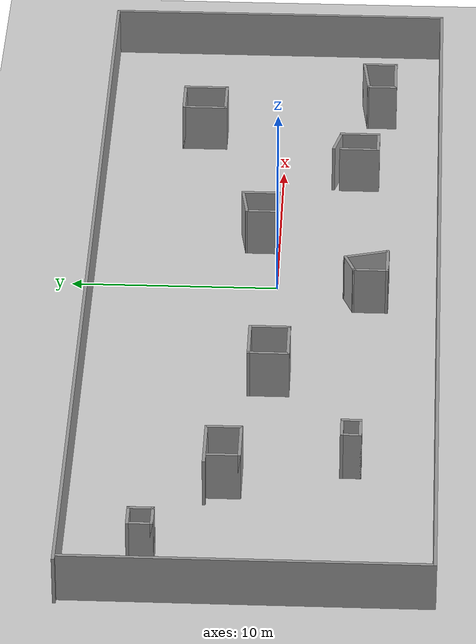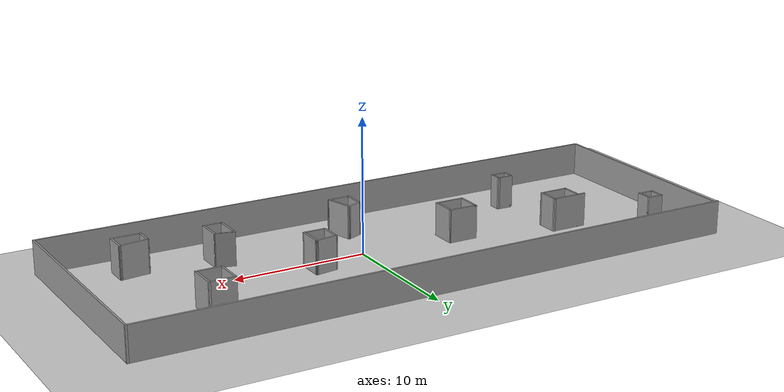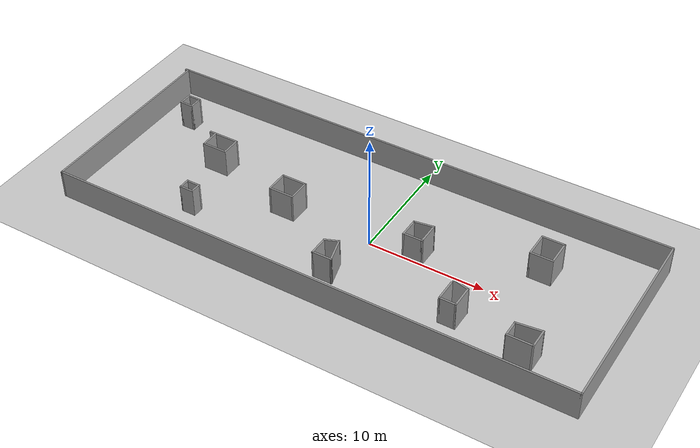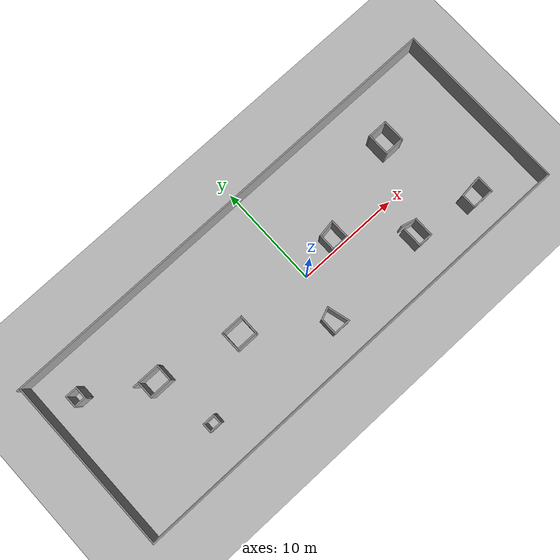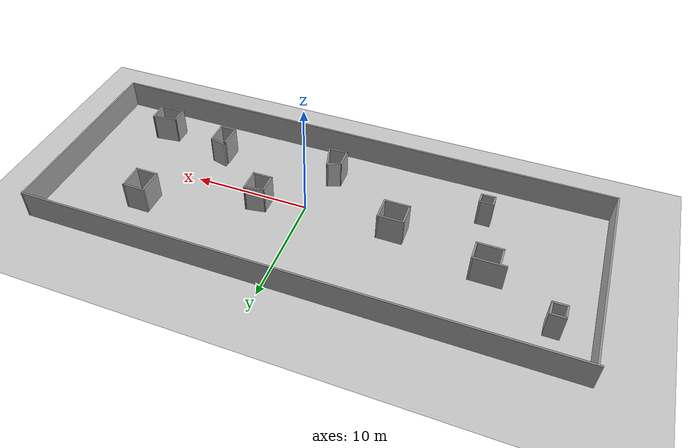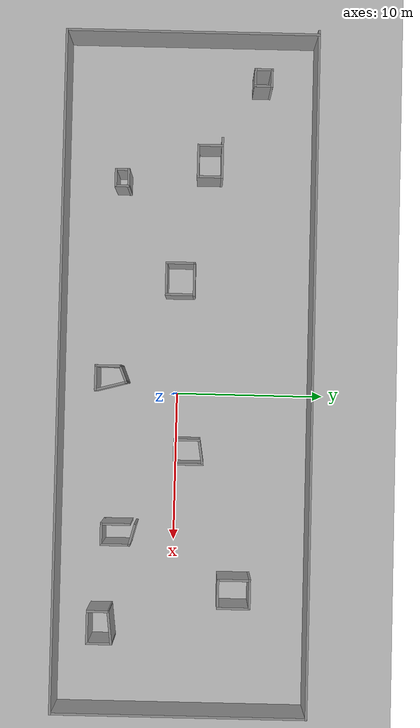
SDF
<sdf version="1.6">
 <world name="default">
  <light name="sun" type="directional">
   <pose>0 0 10 0 -0 0</pose>
   <diffuse>0.8 0.8 0.8 1</diffuse>
   <specular>0.2 0.2 0.2 1</specular>
   <attenuation>
    <range>1000</range>
    <constant>0.9</constant>
    <linear>0.01</linear>
    <quadratic>0.001</quadratic>
   </attenuation>
   <direction>-0.5 0.1 -0.9</direction>
  </light>
  <model name="ground_plane">
   <static>1</static>
   <link name="link">
    <collision name="collision">
     <geometry><plane><normal>0 0 1</normal><size>100 100</size></plane></geometry>
     <surface>
      <contact><collide_bitmask>65535</collide_bitmask></contact>
      <friction><ode><mu>100</mu><mu2>50</mu2></ode></friction>
     </surface>
    </collision>
    <visual name="visual">
     <cast_shadows>0</cast_shadows>
     <geometry><plane><normal>0 0 1</normal><size>100 100</size></plane></geometry>
     <material>
      <script><uri>file://media/materials/scripts/gazebo.material</uri><name>Gazebo/Grey</name></script>
     </material>
    </visual>
   </link>
  </model>
  <gravity>0 0 -9.8</gravity>
  <magnetic_field>6e-06 2.3e-05 -4.2e-05</magnetic_field>
  <atmosphere type="adiabatic"/>
  <physics name="default_physics" default="0" type="ode">
   <max_step_size>0.001</max_step_size>
   <real_time_factor>1</real_time_factor>
   <real_time_update_rate>1000</real_time_update_rate>
  </physics>
  <scene><ambient>0.4 0.4 0.4 1</ambient><background>0.7 0.7 0.7 1</background><shadows>1</shadows></scene>
  <audio><device>default</device></audio>
  <spherical_coordinates>
   <surface_model>EARTH_WGS84</surface_model>
   <latitude_deg>0</latitude_deg>
   <longitude_deg>0</longitude_deg>
   <elevation>0</elevation>
   <heading_deg>0</heading_deg>
  </spherical_coordinates>
  <model name="easy">
   <pose>-1.60326 0.623904 0 0 -0 0</pose>
   <link name="Wall_0">
    <collision name="Wall_0_Collision">
     <geometry><box><size>17 0.15 2.5</size></box></geometry>
     <pose>0 0 1.25 0 -0 0</pose>
    </collision>
    <visual name="Wall_0_Visual">
     <pose>0 0 1.25 0 -0 0</pose>
     <geometry><box><size>17 0.15 2.5</size></box></geometry>
     <material>
      <script><uri>file://media/materials/scripts/gazebo.material</uri><name>Gazebo/Grey</name></script>
      <ambient>1 1 1 1</ambient>
     </material>
     <meta><layer>0</layer></meta>
    </visual>
    <pose>-22.55 -0 0 0 -0 -1.5708</pose>
   </link>
   <link name="Wall_1">
    <collision name="Wall_1_Collision">
     <geometry><box><size>45.5 0.15 2.5</size></box></geometry>
     <pose>0 0 1.25 0 -0 0</pose>
    </collision>
    <visual name="Wall_1_Visual">
     <pose>0 0 1.25 0 -0 0</pose>
     <geometry><box><size>45.5 0.15 2.5</size></box></geometry>
     <material>
      <script><uri>file://media/materials/scripts/gazebo.material</uri><name>Gazebo/Grey</name></script>
      <ambient>1 1 1 1</ambient>
     </material>
     <meta><layer>0</layer></meta>
    </visual>
    <pose>0.125 -8.425 0 0 -0 0</pose>
   </link>
   <link name="Wall_10">
    <collision name="Wall_10_Collision">
     <geometry><box><size>1.75 0.15 2.5</size></box></geometry>
     <pose>0 0 1.25 0 -0 0</pose>
    </collision>
    <visual name="Wall_10_Visual">
     <pose>0 0 1.25 0 -0 0</pose>
     <geometry><box><size>1.75 0.15 2.5</size></box></geometry>
     <material>
      <script><uri>file://media/materials/scripts/gazebo.material</uri><name>Gazebo/Grey</name></script>
      <ambient>1 1 1 1</ambient>
     </material>
     <meta><layer>0</layer></meta>
    </visual>
    <pose>-14.976 1.32858 0 0 -0 -1.5708</pose>
   </link>
   <link name="Wall_11">
    <collision name="Wall_11_Collision">
     <geometry><box><size>2.25 0.15 2.5</size></box></geometry>
     <pose>0 0 1.25 0 -0 0</pose>
    </collision>
    <visual name="Wall_11_Visual">
     <pose>0 0 1.25 0 -0 0</pose>
     <geometry><box><size>2.25 0.15 2.5</size></box></geometry>
     <material>
      <script><uri>file://media/materials/scripts/gazebo.material</uri><name>Gazebo/Grey</name></script>
      <ambient>1 1 1 1</ambient>
     </material>
     <meta><layer>0</layer></meta>
    </visual>
    <pose>-13.926 0.528577 0 0 -0 0</pose>
   </link>
   <link name="Wall_12">
    <collision name="Wall_12_Collision">
     <geometry><box><size>1.75 0.15 2.5</size></box></geometry>
     <pose>0 0 1.25 0 -0 0</pose>
    </collision>
    <visual name="Wall_12_Visual">
     <pose>0 0 1.25 0 -0 0</pose>
     <geometry><box><size>1.75 0.15 2.5</size></box></geometry>
     <material>
      <script><uri>file://media/materials/scripts/gazebo.material</uri><name>Gazebo/Grey</name></script>
      <ambient>1 1 1 1</ambient>
     </material>
     <meta><layer>0</layer></meta>
    </visual>
    <pose>-12.876 1.32858 0 0 -0 1.5708</pose>
   </link>
   <link name="Wall_13">
    <collision name="Wall_13_Collision">
     <geometry><box><size>2.75 0.15 2.5</size></box></geometry>
     <pose>0 0 1.25 0 -0 0</pose>
    </collision>
    <visual name="Wall_13_Visual">
     <pose>0 0 1.25 0 -0 0</pose>
     <geometry><box><size>2.75 0.15 2.5</size></box></geometry>
     <material>
      <script><uri>file://media/materials/scripts/gazebo.material</uri><name>Gazebo/Grey</name></script>
      <ambient>1 1 1 1</ambient>
     </material>
     <meta><layer>0</layer></meta>
    </visual>
    <pose>-14.176 2.12858 0 0 -0 3.14159</pose>
   </link>
   <link name="Wall_15">
    <collision name="Wall_15_Collision">
     <geometry><box><size>2 0.15 2.5</size></box></geometry>
     <pose>0 0 1.25 0 -0 0</pose>
    </collision>
    <visual name="Wall_15_Visual">
     <pose>0 0 1.25 0 -0 0</pose>
     <geometry><box><size>2 0.15 2.5</size></box></geometry>
     <material>
      <script><uri>file://media/materials/scripts/gazebo.material</uri><name>Gazebo/Grey</name></script>
      <ambient>1 1 1 1</ambient>
     </material>
     <meta><layer>0</layer></meta>
    </visual>
    <pose>-7.0827 -0.484594 0 0 -0 -1.5708</pose>
   </link>
   <link name="Wall_16">
    <collision name="Wall_16_Collision">
     <geometry><box><size>2.25 0.15 2.5</size></box></geometry>
     <pose>0 0 1.25 0 -0 0</pose>
    </collision>
    <visual name="Wall_16_Visual">
     <pose>0 0 1.25 0 -0 0</pose>
     <geometry><box><size>2.25 0.15 2.5</size></box></geometry>
     <material>
      <script><uri>file://media/materials/scripts/gazebo.material</uri><name>Gazebo/Grey</name></script>
      <ambient>1 1 1 1</ambient>
     </material>
     <meta><layer>0</layer></meta>
    </visual>
    <pose>-6.0327 -1.40959 0 0 -0 0</pose>
   </link>
   <link name="Wall_17">
    <collision name="Wall_17_Collision">
     <geometry><box><size>2 0.15 2.5</size></box></geometry>
     <pose>0 0 1.25 0 -0 0</pose>
    </collision>
    <visual name="Wall_17_Visual">
     <pose>0 0 1.25 0 -0 0</pose>
     <geometry><box><size>2 0.15 2.5</size></box></geometry>
     <material>
      <script><uri>file://media/materials/scripts/gazebo.material</uri><name>Gazebo/Grey</name></script>
      <ambient>1 1 1 1</ambient>
     </material>
     <meta><layer>0</layer></meta>
    </visual>
    <pose>-4.9827 -0.484594 0 0 -0 1.5708</pose>
   </link>
   <link name="Wall_18">
    <collision name="Wall_18_Collision">
     <geometry><box><size>2.25 0.15 2.5</size></box></geometry>
     <pose>0 0 1.25 0 -0 0</pose>
    </collision>
    <visual name="Wall_18_Visual">
     <pose>0 0 1.25 0 -0 0</pose>
     <geometry><box><size>2.25 0.15 2.5</size></box></geometry>
     <material>
      <script><uri>file://media/materials/scripts/gazebo.material</uri><name>Gazebo/Grey</name></script>
      <ambient>1 1 1 1</ambient>
     </material>
     <meta><layer>0</layer></meta>
    </visual>
    <pose>-6.0327 0.440406 0 0 -0 3.14159</pose>
   </link>
   <link name="Wall_2">
    <collision name="Wall_2_Collision">
     <geometry><box><size>17 0.15 2.5</size></box></geometry>
     <pose>0 0 1.25 0 -0 0</pose>
    </collision>
    <visual name="Wall_2_Visual">
     <pose>0 0 1.25 0 -0 0</pose>
     <geometry><box><size>17 0.15 2.5</size></box></geometry>
     <material>
      <script><uri>file://media/materials/scripts/gazebo.material</uri><name>Gazebo/Grey</name></script>
      <ambient>1 1 1 1</ambient>
     </material>
     <meta><layer>0</layer></meta>
    </visual>
    <pose>22.8 -0 0 0 -0 1.5708</pose>
   </link>
   <link name="Wall_20">
    <collision name="Wall_20_Collision">
     <geometry><box><size>1 0.15 2.5</size></box></geometry>
     <pose>0 0 1.25 0 -0 0</pose>
    </collision>
    <visual name="Wall_20_Visual">
     <pose>0 0 1.25 0 -0 0</pose>
     <geometry><box><size>1 0.15 2.5</size></box></geometry>
     <material>
      <script><uri>file://media/materials/scripts/gazebo.material</uri><name>Gazebo/Grey</name></script>
      <ambient>1 1 1 1</ambient>
     </material>
     <meta><layer>0</layer></meta>
    </visual>
    <pose>-13.2422 -4.50159 0 0 -0 -1.5708</pose>
   </link>
   <link name="Wall_21">
    <collision name="Wall_21_Collision">
     <geometry><box><size>1.25 0.15 2.5</size></box></geometry>
     <pose>0 0 1.25 0 -0 0</pose>
    </collision>
    <visual name="Wall_21_Visual">
     <pose>0 0 1.25 0 -0 0</pose>
     <geometry><box><size>1.25 0.15 2.5</size></box></geometry>
     <material>
      <script><uri>file://media/materials/scripts/gazebo.material</uri><name>Gazebo/Grey</name></script>
      <ambient>1 1 1 1</ambient>
     </material>
     <meta><layer>0</layer></meta>
    </visual>
    <pose>-12.6922 -4.92659 0 0 -0 0</pose>
   </link>
   <link name="Wall_22">
    <collision name="Wall_22_Collision">
     <geometry><box><size>1 0.15 2.5</size></box></geometry>
     <pose>0 0 1.25 0 -0 0</pose>
    </collision>
    <visual name="Wall_22_Visual">
     <pose>0 0 1.25 0 -0 0</pose>
     <geometry><box><size>1 0.15 2.5</size></box></geometry>
     <material>
      <script><uri>file://media/materials/scripts/gazebo.material</uri><name>Gazebo/Grey</name></script>
      <ambient>1 1 1 1</ambient>
     </material>
     <meta><layer>0</layer></meta>
    </visual>
    <pose>-12.1422 -4.50159 0 0 -0 1.5708</pose>
   </link>
   <link name="Wall_23">
    <collision name="Wall_23_Collision">
     <geometry><box><size>1.25 0.15 2.5</size></box></geometry>
     <pose>0 0 1.25 0 -0 0</pose>
    </collision>
    <visual name="Wall_23_Visual">
     <pose>0 0 1.25 0 -0 0</pose>
     <geometry><box><size>1.25 0.15 2.5</size></box></geometry>
     <material>
      <script><uri>file://media/materials/scripts/gazebo.material</uri><name>Gazebo/Grey</name></script>
      <ambient>1 1 1 1</ambient>
     </material>
     <meta><layer>0</layer></meta>
    </visual>
    <pose>-12.6922 -4.07659 0 0 -0 3.14159</pose>
   </link>
   <link name="Wall_25">
    <collision name="Wall_25_Collision">
     <geometry><box><size>1.75 0.15 2.5</size></box></geometry>
     <pose>0 0 1.25 0 -0 0</pose>
    </collision>
    <visual name="Wall_25_Visual">
     <pose>0 0 1.25 0 -0 0</pose>
     <geometry><box><size>1.75 0.15 2.5</size></box></geometry>
     <material>
      <script><uri>file://media/materials/scripts/gazebo.material</uri><name>Gazebo/Grey</name></script>
      <ambient>1 1 1 1</ambient>
     </material>
     <meta><layer>0</layer></meta>
    </visual>
    <pose>4.64325 0.187921 0 0 -0 -1.5708</pose>
   </link>
   <link name="Wall_26">
    <collision name="Wall_26_Collision">
     <geometry><box><size>1.75 0.15 2.5</size></box></geometry>
     <pose>0 0 1.25 0 -0 0</pose>
    </collision>
    <visual name="Wall_26_Visual">
     <pose>0 0 1.25 0 -0 0</pose>
     <geometry><box><size>1.75 0.15 2.5</size></box></geometry>
     <material>
      <script><uri>file://media/materials/scripts/gazebo.material</uri><name>Gazebo/Grey</name></script>
      <ambient>1 1 1 1</ambient>
     </material>
     <meta><layer>0</layer></meta>
    </visual>
    <pose>5.44325 -0.612079 0 0 -0 0</pose>
   </link>
   <link name="Wall_27">
    <collision name="Wall_27_Collision">
     <geometry><box><size>2 0.15 2.5</size></box></geometry>
     <pose>0 0 1.25 0 -0 0</pose>
    </collision>
    <visual name="Wall_27_Visual">
     <pose>0 0 1.25 0 -0 0</pose>
     <geometry><box><size>2 0.15 2.5</size></box></geometry>
     <material>
      <script><uri>file://media/materials/scripts/gazebo.material</uri><name>Gazebo/Grey</name></script>
      <ambient>1 1 1 1</ambient>
     </material>
     <meta><layer>0</layer></meta>
    </visual>
    <pose>6.24324 0.312921 0 0 -0 1.5708</pose>
   </link>
   <link name="Wall_28">
    <collision name="Wall_28_Collision">
     <geometry><box><size>1.76941 0.15 2.5</size></box></geometry>
     <pose>0 0 1.25 0 -0 0</pose>
    </collision>
    <visual name="Wall_28_Visual">
     <pose>0 0 1.25 0 -0 0</pose>
     <geometry><box><size>1.76941 0.15 2.5</size></box></geometry>
     <material>
      <script><uri>file://media/materials/scripts/gazebo.material</uri><name>Gazebo/Grey</name></script>
      <ambient>1 1 1 1</ambient>
     </material>
     <meta><layer>0</layer></meta>
    </visual>
    <pose>5.44325 1.11292 0 0 -0 -2.9866</pose>
   </link>
   <link name="Wall_3">
    <collision name="Wall_3_Collision">
     <geometry><box><size>45.75 0.15 2.5</size></box></geometry>
     <pose>0 0 1.25 0 -0 0</pose>
    </collision>
    <visual name="Wall_3_Visual">
     <pose>0 0 1.25 0 -0 0</pose>
     <geometry><box><size>45.75 0.15 2.5</size></box></geometry>
     <material>
      <script><uri>file://media/materials/scripts/gazebo.material</uri><name>Gazebo/Grey</name></script>
      <ambient>1 1 1 1</ambient>
     </material>
     <meta><layer>0</layer></meta>
    </visual>
    <pose>-0 8.425 0 0 -0 3.14159</pose>
   </link>
   <link name="Wall_30">
    <collision name="Wall_30_Collision">
     <geometry><box><size>2.25 0.15 2.5</size></box></geometry>
     <pose>0 0 1.25 0 -0 0</pose>
    </collision>
    <visual name="Wall_30_Visual">
     <pose>0 0 1.25 0 -0 0</pose>
     <geometry><box><size>2.25 0.15 2.5</size></box></geometry>
     <material>
      <script><uri>file://media/materials/scripts/gazebo.material</uri><name>Gazebo/Grey</name></script>
      <ambient>1 1 1 1</ambient>
     </material>
     <meta><layer>0</layer></meta>
    </visual>
    <pose>13.8141 3.49677 0 0 -0 -1.5708</pose>
   </link>
   <link name="Wall_31">
    <collision name="Wall_31_Collision">
     <geometry><box><size>2 0.15 2.5</size></box></geometry>
     <pose>0 0 1.25 0 -0 0</pose>
    </collision>
    <visual name="Wall_31_Visual">
     <pose>0 0 1.25 0 -0 0</pose>
     <geometry><box><size>2 0.15 2.5</size></box></geometry>
     <material>
      <script><uri>file://media/materials/scripts/gazebo.material</uri><name>Gazebo/Grey</name></script>
      <ambient>1 1 1 1</ambient>
     </material>
     <meta><layer>0</layer></meta>
    </visual>
    <pose>14.7391 2.44677 0 0 -0 0</pose>
   </link>
   <link name="Wall_32">
    <collision name="Wall_32_Collision">
     <geometry><box><size>2.25 0.15 2.5</size></box></geometry>
     <pose>0 0 1.25 0 -0 0</pose>
    </collision>
    <visual name="Wall_32_Visual">
     <pose>0 0 1.25 0 -0 0</pose>
     <geometry><box><size>2.25 0.15 2.5</size></box></geometry>
     <material>
      <script><uri>file://media/materials/scripts/gazebo.material</uri><name>Gazebo/Grey</name></script>
      <ambient>1 1 1 1</ambient>
     </material>
     <meta><layer>0</layer></meta>
    </visual>
    <pose>15.6641 3.49677 0 0 -0 1.5708</pose>
   </link>
   <link name="Wall_33">
    <collision name="Wall_33_Collision">
     <geometry><box><size>2 0.15 2.5</size></box></geometry>
     <pose>0 0 1.25 0 -0 0</pose>
    </collision>
    <visual name="Wall_33_Visual">
     <pose>0 0 1.25 0 -0 0</pose>
     <geometry><box><size>2 0.15 2.5</size></box></geometry>
     <material>
      <script><uri>file://media/materials/scripts/gazebo.material</uri><name>Gazebo/Grey</name></script>
      <ambient>1 1 1 1</ambient>
     </material>
     <meta><layer>0</layer></meta>
    </visual>
    <pose>14.7391 4.54677 0 0 -0 3.14159</pose>
   </link>
   <link name="Wall_35">
    <collision name="Wall_35_Collision">
     <geometry><box><size>2 0.15 2.5</size></box></geometry>
     <pose>0 0 1.25 0 -0 0</pose>
    </collision>
    <visual name="Wall_35_Visual">
     <pose>0 0 1.25 0 -0 0</pose>
     <geometry><box><size>2 0.15 2.5</size></box></geometry>
     <material>
      <script><uri>file://media/materials/scripts/gazebo.material</uri><name>Gazebo/Grey</name></script>
      <ambient>1 1 1 1</ambient>
     </material>
     <meta><layer>0</layer></meta>
    </visual>
    <pose>10.3009 -4.40845 0 0 -0 -1.5708</pose>
   </link>
   <link name="Wall_36">
    <collision name="Wall_36_Collision">
     <geometry><box><size>1.5 0.15 2.5</size></box></geometry>
     <pose>0 0 1.25 0 -0 0</pose>
    </collision>
    <visual name="Wall_36_Visual">
     <pose>0 0 1.25 0 -0 0</pose>
     <geometry><box><size>1.5 0.15 2.5</size></box></geometry>
     <material>
      <script><uri>file://media/materials/scripts/gazebo.material</uri><name>Gazebo/Grey</name></script>
      <ambient>1 1 1 1</ambient>
     </material>
     <meta><layer>0</layer></meta>
    </visual>
    <pose>10.9759 -5.33345 0 0 -0 0</pose>
   </link>
   <link name="Wall_37">
    <collision name="Wall_37_Collision">
     <geometry><box><size>2 0.15 2.5</size></box></geometry>
     <pose>0 0 1.25 0 -0 0</pose>
    </collision>
    <visual name="Wall_37_Visual">
     <pose>0 0 1.25 0 -0 0</pose>
     <geometry><box><size>2 0.15 2.5</size></box></geometry>
     <material>
      <script><uri>file://media/materials/scripts/gazebo.material</uri><name>Gazebo/Grey</name></script>
      <ambient>1 1 1 1</ambient>
     </material>
     <meta><layer>0</layer></meta>
    </visual>
    <pose>11.6509 -4.40845 0 0 -0 1.5708</pose>
   </link>
   <link name="Wall_38">
    <collision name="Wall_38_Collision">
     <geometry><box><size>1.5 0.15 2.5</size></box></geometry>
     <pose>0 0 1.25 0 -0 0</pose>
    </collision>
    <visual name="Wall_38_Visual">
     <pose>0 0 1.25 0 -0 0</pose>
     <geometry><box><size>1.5 0.15 2.5</size></box></geometry>
     <material>
      <script><uri>file://media/materials/scripts/gazebo.material</uri><name>Gazebo/Grey</name></script>
      <ambient>1 1 1 1</ambient>
     </material>
     <meta><layer>0</layer></meta>
    </visual>
    <pose>10.9989 -3.30875 0 0 -0 2.87979</pose>
   </link>
   <link name="Wall_40">
    <collision name="Wall_40_Collision">
     <geometry><box><size>1.5 0.15 2.5</size></box></geometry>
     <pose>0 0 1.25 0 -0 0</pose>
    </collision>
    <visual name="Wall_40_Visual">
     <pose>0 0 1.25 0 -0 0</pose>
     <geometry><box><size>1.5 0.15 2.5</size></box></geometry>
     <material>
      <script><uri>file://media/materials/scripts/gazebo.material</uri><name>Gazebo/Grey</name></script>
      <ambient>1 1 1 1</ambient>
     </material>
     <meta><layer>0</layer></meta>
    </visual>
    <pose>16.0498 -5.43599 0 0 -0 -1.5708</pose>
   </link>
   <link name="Wall_41">
    <collision name="Wall_41_Collision">
     <geometry><box><size>2.25 0.15 2.5</size></box></geometry>
     <pose>0 0 1.25 0 -0 0</pose>
    </collision>
    <visual name="Wall_41_Visual">
     <pose>0 0 1.25 0 -0 0</pose>
     <geometry><box><size>2.25 0.15 2.5</size></box></geometry>
     <material>
      <script><uri>file://media/materials/scripts/gazebo.material</uri><name>Gazebo/Grey</name></script>
      <ambient>1 1 1 1</ambient>
     </material>
     <meta><layer>0</layer></meta>
    </visual>
    <pose>17.0998 -6.11099 0 0 -0 0</pose>
   </link>
   <link name="Wall_42">
    <collision name="Wall_42_Collision">
     <geometry><box><size>1.75 0.15 2.5</size></box></geometry>
     <pose>0 0 1.25 0 -0 0</pose>
    </collision>
    <visual name="Wall_42_Visual">
     <pose>0 0 1.25 0 -0 0</pose>
     <geometry><box><size>1.75 0.15 2.5</size></box></geometry>
     <material>
      <script><uri>file://media/materials/scripts/gazebo.material</uri><name>Gazebo/Grey</name></script>
      <ambient>1 1 1 1</ambient>
     </material>
     <meta><layer>0</layer></meta>
    </visual>
    <pose>18.1498 -5.31099 0 0 -0 1.5708</pose>
   </link>
   <link name="Wall_43">
    <collision name="Wall_43_Collision">
     <geometry><box><size>2.26483 0.15 2.5</size></box></geometry>
     <pose>0 0 1.25 0 -0 0</pose>
    </collision>
    <visual name="Wall_43_Visual">
     <pose>0 0 1.25 0 -0 0</pose>
     <geometry><box><size>2.26483 0.15 2.5</size></box></geometry>
     <material>
      <script><uri>file://media/materials/scripts/gazebo.material</uri><name>Gazebo/Grey</name></script>
      <ambient>1 1 1 1</ambient>
     </material>
     <meta><layer>0</layer></meta>
    </visual>
    <pose>17.0998 -4.63599 0 0 -0 -3.0231</pose>
   </link>
   <link name="Wall_45">
    <collision name="Wall_45_Collision">
     <geometry><box><size>1.75 0.15 2.5</size></box></geometry>
     <pose>0 0 1.25 0 -0 0</pose>
    </collision>
    <visual name="Wall_45_Visual">
     <pose>0 0 1.25 0 -0 0</pose>
     <geometry><box><size>1.75 0.15 2.5</size></box></geometry>
     <material>
      <script><uri>file://media/materials/scripts/gazebo.material</uri><name>Gazebo/Grey</name></script>
      <ambient>1 1 1 1</ambient>
     </material>
     <meta><layer>0</layer></meta>
    </visual>
    <pose>-0.147511 -5.15035 0 0 -0 -1.5708</pose>
   </link>
   <link name="Wall_46">
    <collision name="Wall_46_Collision">
     <geometry><box><size>1.75 0.15 2.5</size></box></geometry>
     <pose>0 0 1.25 0 -0 0</pose>
    </collision>
    <visual name="Wall_46_Visual">
     <pose>0 0 1.25 0 -0 0</pose>
     <geometry><box><size>1.75 0.15 2.5</size></box></geometry>
     <material>
      <script><uri>file://media/materials/scripts/gazebo.material</uri><name>Gazebo/Grey</name></script>
      <ambient>1 1 1 1</ambient>
     </material>
     <meta><layer>0</layer></meta>
    </visual>
    <pose>0.652489 -5.95035 0 0 -0 0</pose>
   </link>
   <link name="Wall_47">
    <collision name="Wall_47_Collision">
     <geometry><box><size>2.25 0.15 2.5</size></box></geometry>
     <pose>0 0 1.25 0 -0 0</pose>
    </collision>
    <visual name="Wall_47_Visual">
     <pose>0 0 1.25 0 -0 0</pose>
     <geometry><box><size>2.25 0.15 2.5</size></box></geometry>
     <material>
      <script><uri>file://media/materials/scripts/gazebo.material</uri><name>Gazebo/Grey</name></script>
      <ambient>1 1 1 1</ambient>
     </material>
     <meta><layer>0</layer></meta>
    </visual>
    <pose>1.18073 -4.93613 0 0 -0 1.8326</pose>
   </link>
   <link name="Wall_48">
    <collision name="Wall_48_Collision">
     <geometry><box><size>1.29005 0.15 2.5</size></box></geometry>
     <pose>0 0 1.25 0 -0 0</pose>
    </collision>
    <visual name="Wall_48_Visual">
     <pose>0 0 1.25 0 -0 0</pose>
     <geometry><box><size>1.29005 0.15 2.5</size></box></geometry>
     <material>
      <script><uri>file://media/materials/scripts/gazebo.material</uri><name>Gazebo/Grey</name></script>
      <ambient>1 1 1 1</ambient>
     </material>
     <meta><layer>0</layer></meta>
    </visual>
    <pose>0.380729 -4.13613 0 0 -0 -2.75632</pose>
   </link>
   <link name="Wall_5">
    <collision name="Wall_5_Collision">
     <geometry><box><size>1.25 0.15 2.5</size></box></geometry>
     <pose>0 0 1.25 0 -0 0</pose>
    </collision>
    <visual name="Wall_5_Visual">
     <pose>0 0 1.25 0 -0 0</pose>
     <geometry><box><size>1.25 0.15 2.5</size></box></geometry>
     <material>
      <script><uri>file://media/materials/scripts/gazebo.material</uri><name>Gazebo/Grey</name></script>
      <ambient>1 1 1 1</ambient>
     </material>
     <meta><layer>0</layer></meta>
    </visual>
    <pose>-20.1318 4.77241 0 0 -0 -1.5708</pose>
   </link>
   <link name="Wall_6">
    <collision name="Wall_6_Collision">
     <geometry><box><size>1.25 0.15 2.5</size></box></geometry>
     <pose>0 0 1.25 0 -0 0</pose>
    </collision>
    <visual name="Wall_6_Visual">
     <pose>0 0 1.25 0 -0 0</pose>
     <geometry><box><size>1.25 0.15 2.5</size></box></geometry>
     <material>
      <script><uri>file://media/materials/scripts/gazebo.material</uri><name>Gazebo/Grey</name></script>
      <ambient>1 1 1 1</ambient>
     </material>
     <meta><layer>0</layer></meta>
    </visual>
    <pose>-19.5818 4.22241 0 0 -0 0</pose>
   </link>
   <link name="Wall_7">
    <collision name="Wall_7_Collision">
     <geometry><box><size>1.25 0.15 2.5</size></box></geometry>
     <pose>0 0 1.25 0 -0 0</pose>
    </collision>
    <visual name="Wall_7_Visual">
     <pose>0 0 1.25 0 -0 0</pose>
     <geometry><box><size>1.25 0.15 2.5</size></box></geometry>
     <material>
      <script><uri>file://media/materials/scripts/gazebo.material</uri><name>Gazebo/Grey</name></script>
      <ambient>1 1 1 1</ambient>
     </material>
     <meta><layer>0</layer></meta>
    </visual>
    <pose>-19.0318 4.77241 0 0 -0 1.5708</pose>
   </link>
   <link name="Wall_8">
    <collision name="Wall_8_Collision">
     <geometry><box><size>1.25 0.15 2.5</size></box></geometry>
     <pose>0 0 1.25 0 -0 0</pose>
    </collision>
    <visual name="Wall_8_Visual">
     <pose>0 0 1.25 0 -0 0</pose>
     <geometry><box><size>1.25 0.15 2.5</size></box></geometry>
     <material>
      <script><uri>file://media/materials/scripts/gazebo.material</uri><name>Gazebo/Grey</name></script>
      <ambient>1 1 1 1</ambient>
     </material>
     <meta><layer>0</layer></meta>
    </visual>
    <pose>-19.5818 5.32242 0 0 -0 3.14159</pose>
   </link>
   <static>1</static>
  </model>
 </world>
</sdf>
